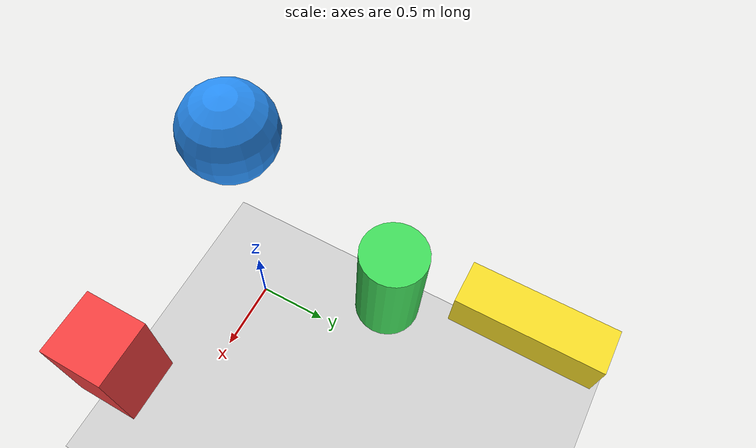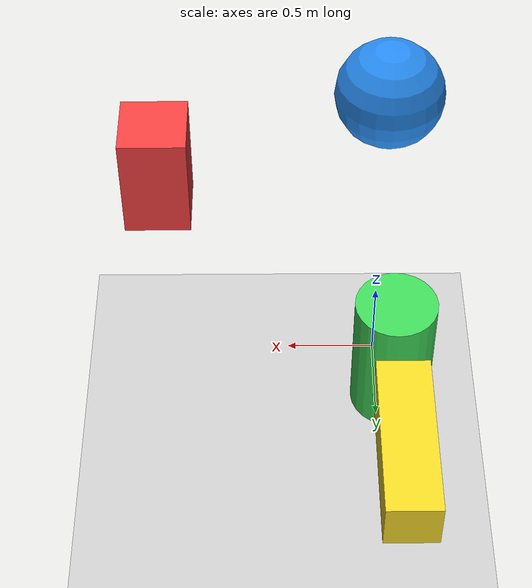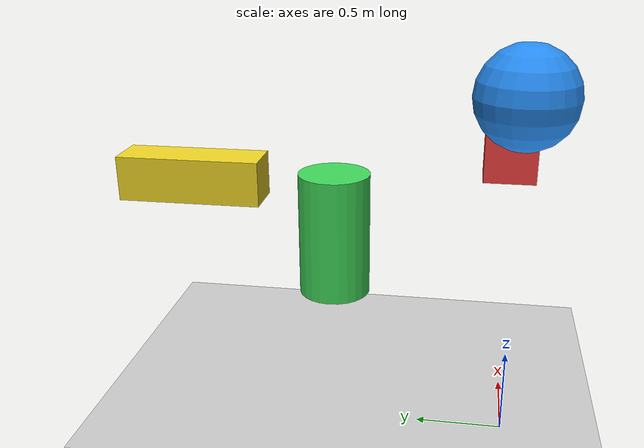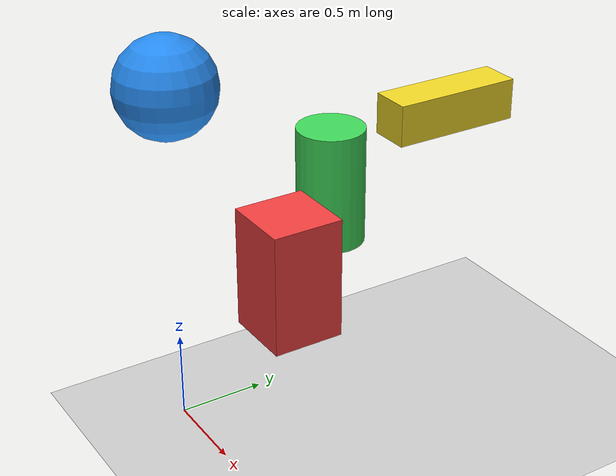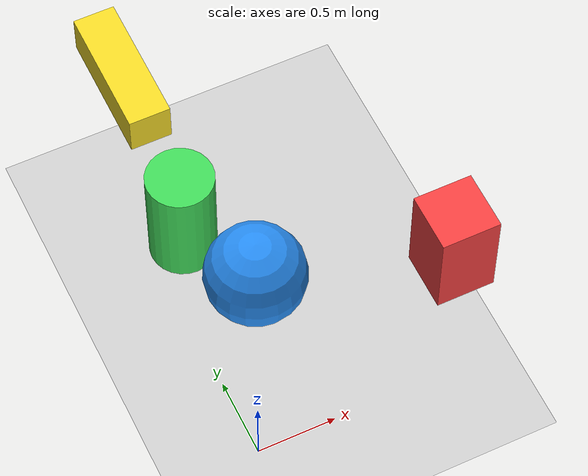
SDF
<?xml version="1.0"?>
<sdf version="1.9">
  <world name="arc_drone_bench_mission">
    <gravity>0 0 -9.8</gravity>
    <magnetic_field>6e-06 2.3e-05 -4.2e-05</magnetic_field>
    <atmosphere type="adiabatic"/>

    <plugin
      filename="gz-sim-physics-system"
      name="gz::sim::systems::Physics"/>
    <plugin
      filename="gz-sim-user-commands-system"
      name="gz::sim::systems::UserCommands"/>
    <plugin
      filename="gz-sim-scene-broadcaster-system"
      name="gz::sim::systems::SceneBroadcaster"/>

    <light name="sun" type="directional">
      <cast_shadows>true</cast_shadows>
      <pose>0 0 10 0 0 0</pose>
      <diffuse>0.95 0.95 0.95 1</diffuse>
      <specular>0.2 0.2 0.2 1</specular>
      <attenuation>
        <range>1000</range>
        <constant>0.9</constant>
        <linear>0.01</linear>
        <quadratic>0.001</quadratic>
      </attenuation>
      <direction>-0.5 0.1 -0.9</direction>
    </light>

    <model name="ground_plane">
      <static>true</static>
      <link name="ground_link">
        <collision name="ground_collision">
          <geometry>
            <plane>
              <normal>0 0 1</normal>
              <size>200 200</size>
            </plane>
          </geometry>
        </collision>
        <visual name="ground_visual">
          <geometry>
            <plane>
              <normal>0 0 1</normal>
              <size>200 200</size>
            </plane>
          </geometry>
          <material>
            <ambient>0.8 0.8 0.8 1</ambient>
            <diffuse>0.8 0.8 0.8 1</diffuse>
          </material>
        </visual>
      </link>
    </model>

    <include>
      <uri>model://arc_marker_symmetry</uri>
    </include>
    <include>
      <uri>model://arc_marker_counting</uri>
    </include>
    <include>
      <uri>model://arc_marker_composition</uri>
    </include>
    <include>
      <uri>model://arc_marker_path_planning</uri>
    </include>
  </world>
</sdf>

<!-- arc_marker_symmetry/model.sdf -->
<sdf version="1.9">
  <model name="arc_marker_symmetry">
    <static>true</static>
    <pose>1.2 0.0 1.5 0 0 0</pose>
    <link name="marker_link">
      <visual name="marker_visual">
        <geometry>
          <box>
            <size>0.35 0.35 0.6</size>
          </box>
        </geometry>
        <material>
          <ambient>0.95 0.25 0.25 1.0</ambient>
          <diffuse>0.95 0.25 0.25 1.0</diffuse>
        </material>
      </visual>
      <collision name="marker_collision">
        <geometry>
          <box>
            <size>0.35 0.35 0.6</size>
          </box>
        </geometry>
      </collision>
    </link>
  </model>
</sdf>

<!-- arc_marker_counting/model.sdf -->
<sdf version="1.9">
  <model name="arc_marker_counting">
    <static>true</static>
    <pose>0.0 1.0 1.2 0 0 0</pose>
    <link name="marker_link">
      <visual name="marker_visual">
        <geometry>
          <cylinder>
            <radius>0.2</radius>
            <length>0.7</length>
          </cylinder>
        </geometry>
        <material>
          <ambient>0.25 0.85 0.35 1.0</ambient>
          <diffuse>0.25 0.85 0.35 1.0</diffuse>
        </material>
      </visual>
      <collision name="marker_collision">
        <geometry>
          <cylinder>
            <radius>0.2</radius>
            <length>0.7</length>
          </cylinder>
        </geometry>
      </collision>
    </link>
  </model>
</sdf>

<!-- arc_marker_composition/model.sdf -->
<sdf version="1.9">
  <model name="arc_marker_composition">
    <static>true</static>
    <pose>0.0 0.0 2.0 0 0 0</pose>
    <link name="marker_link">
      <visual name="marker_visual">
        <geometry>
          <sphere>
            <radius>0.28</radius>
          </sphere>
        </geometry>
        <material>
          <ambient>0.15 0.55 0.95 1.0</ambient>
          <diffuse>0.15 0.55 0.95 1.0</diffuse>
        </material>
      </visual>
      <collision name="marker_collision">
        <geometry>
          <sphere>
            <radius>0.28</radius>
          </sphere>
        </geometry>
      </collision>
    </link>
  </model>
</sdf>

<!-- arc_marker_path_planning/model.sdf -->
<sdf version="1.9">
  <model name="arc_marker_path_planning">
    <static>true</static>
    <pose>0.0 1.8 1.5 0 0 0</pose>
    <link name="marker_link">
      <visual name="marker_visual">
        <geometry>
          <box>
            <size>0.25 0.8 0.25</size>
          </box>
        </geometry>
        <material>
          <ambient>0.95 0.85 0.15 1.0</ambient>
          <diffuse>0.95 0.85 0.15 1.0</diffuse>
        </material>
      </visual>
      <collision name="marker_collision">
        <geometry>
          <box>
            <size>0.25 0.8 0.25</size>
          </box>
        </geometry>
      </collision>
    </link>
  </model>
</sdf>
